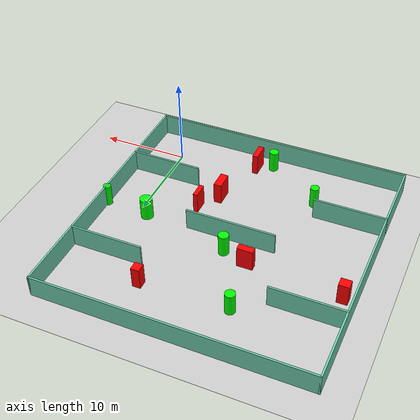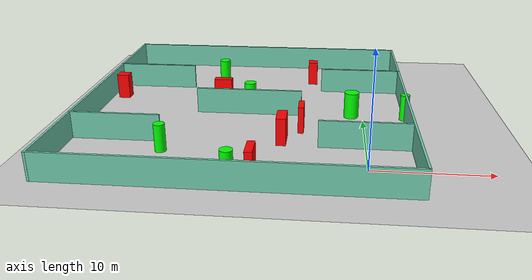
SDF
<sdf version="1.7">
 <world name="default">
  <light name="sun" type="directional">
   <pose>0 0 10 0 -0 0</pose>
   <diffuse>0.8 0.8 0.8 1</diffuse>
   <specular>0.2 0.2 0.2 1</specular>
   <attenuation>
    <range>1000</range>
    <constant>0.9</constant>
    <linear>0.01</linear>
    <quadratic>0.001</quadratic>
   </attenuation>
   <direction>-0.5 0.1 -0.9</direction>
   <spot><inner_angle>0</inner_angle><outer_angle>0</outer_angle><falloff>0</falloff></spot>
  </light>
  <model name="ground_plane">
   <static>1</static>
   <link name="link">
    <collision name="collision">
     <geometry><plane><normal>0 0 1</normal><size>100 100</size></plane></geometry>
     <surface>
      <contact><collide_bitmask>65535</collide_bitmask></contact>
      <friction><ode><mu>100</mu><mu2>50</mu2></ode></friction>
     </surface>
    </collision>
    <visual name="visual">
     <cast_shadows>0</cast_shadows>
     <geometry><plane><normal>0 0 1</normal><size>100 100</size></plane></geometry>
     <material>
      <script><uri>file://media/materials/scripts/gazebo.material</uri><name>Gazebo/Grey</name></script>
     </material>
    </visual>
   </link>
  </model>
  <gravity>0 0 -9.8</gravity>
  <magnetic_field>6e-06 2.3e-05 -4.2e-05</magnetic_field>
  <atmosphere type="adiabatic"/>
  <physics type="ode">
   <max_step_size>0.001</max_step_size>
   <real_time_factor>1</real_time_factor>
   <real_time_update_rate>1000</real_time_update_rate>
  </physics>
  <scene><ambient>0.4 0.4 0.4 1</ambient><background>0.7 0.7 0.7 1</background><shadows>1</shadows></scene>
  <spherical_coordinates>
   <surface_model>EARTH_WGS84</surface_model>
   <latitude_deg>0</latitude_deg>
   <longitude_deg>0</longitude_deg>
   <elevation>0</elevation>
   <heading_deg>0</heading_deg>
  </spherical_coordinates>
  <model name="my_base_walls">
   <link name="Wall_10">
    <collision name="Wall_10_Collision">
     <geometry><box><size>8.2 0.2 2.5</size></box></geometry>
     <pose>0 0 1.25 0 -0 0</pose>
    </collision>
    <visual name="Wall_10_Visual">
     <pose>0 0 1.25 0 -0 0</pose>
     <geometry><box><size>8.2 0.2 2.5</size></box></geometry>
     <material>
      <script><uri>file://media/materials/scripts/gazebo.material</uri><name>Gazebo/Grey</name></script>
      <ambient>0.435294 0.796078 0.67451 1</ambient>
     </material>
     <meta><layer>0</layer></meta>
    </visual>
    <pose>-11 -7 0 0 -0 0</pose>
   </link>
   <link name="Wall_12">
    <collision name="Wall_12_Collision">
     <geometry><box><size>8.2 0.2 2.5</size></box></geometry>
     <pose>0 0 1.25 0 -0 0</pose>
    </collision>
    <visual name="Wall_12_Visual">
     <pose>0 0 1.25 0 -0 0</pose>
     <geometry><box><size>8.2 0.2 2.5</size></box></geometry>
     <material>
      <script><uri>file://media/materials/scripts/gazebo.material</uri><name>Gazebo/Grey</name></script>
      <ambient>0.435294 0.796078 0.67451 1</ambient>
     </material>
     <meta><layer>0</layer></meta>
    </visual>
    <pose>-11 7 0 0 -0 0</pose>
   </link>
   <link name="Wall_14">
    <collision name="Wall_14_Collision">
     <geometry><box><size>8.2 0.2 2.5</size></box></geometry>
     <pose>0 0 1.25 0 -0 0</pose>
    </collision>
    <visual name="Wall_14_Visual">
     <pose>0 0 1.25 0 -0 0</pose>
     <geometry><box><size>8.2 0.2 2.5</size></box></geometry>
     <material>
      <script><uri>file://media/materials/scripts/gazebo.material</uri><name>Gazebo/Grey</name></script>
      <ambient>0.435294 0.796078 0.67451 1</ambient>
     </material>
     <meta><layer>0</layer></meta>
    </visual>
    <pose>11 7 0 0 -0 3.14159</pose>
   </link>
   <link name="Wall_16">
    <collision name="Wall_16_Collision">
     <geometry><box><size>10.2 0.2 2.5</size></box></geometry>
     <pose>0 0 1.25 0 -0 0</pose>
    </collision>
    <visual name="Wall_16_Visual">
     <pose>0 0 1.25 0 -0 0</pose>
     <geometry><box><size>10.2 0.2 2.5</size></box></geometry>
     <material>
      <script><uri>file://media/materials/scripts/gazebo.material</uri><name>Gazebo/Grey</name></script>
      <ambient>0.435294 0.796078 0.67451 1</ambient>
     </material>
     <meta><layer>0</layer></meta>
    </visual>
    <pose>0 0 0 0 -0 3.14159</pose>
   </link>
   <link name="Wall_2">
    <collision name="Wall_2_Collision">
     <geometry><box><size>30.2 0.2 2.5</size></box></geometry>
     <pose>0 0 1.25 0 -0 0</pose>
    </collision>
    <visual name="Wall_2_Visual">
     <pose>0 0 1.25 0 -0 0</pose>
     <geometry><box><size>30.2 0.2 2.5</size></box></geometry>
     <material>
      <script><uri>file://media/materials/scripts/gazebo.material</uri><name>Gazebo/Grey</name></script>
      <ambient>0.435294 0.796078 0.67451 1</ambient>
     </material>
     <meta><layer>0</layer></meta>
    </visual>
    <pose>0 -15 0 0 -0 3.14159</pose>
   </link>
   <link name="Wall_3">
    <collision name="Wall_3_Collision">
     <geometry><box><size>30.2 0.2 2.5</size></box></geometry>
     <pose>0 0 1.25 0 -0 0</pose>
    </collision>
    <visual name="Wall_3_Visual">
     <pose>0 0 1.25 0 -0 0</pose>
     <geometry><box><size>30.2 0.2 2.5</size></box></geometry>
     <material>
      <script><uri>file://media/materials/scripts/gazebo.material</uri><name>Gazebo/Grey</name></script>
      <ambient>0.435294 0.796078 0.67451 1</ambient>
     </material>
     <meta><layer>0</layer></meta>
    </visual>
    <pose>-15 0 0 0 -0 1.5708</pose>
   </link>
   <link name="Wall_4">
    <collision name="Wall_4_Collision">
     <geometry><box><size>30.2 0.2 2.5</size></box></geometry>
     <pose>0 0 1.25 0 -0 0</pose>
    </collision>
    <visual name="Wall_4_Visual">
     <pose>0 0 1.25 0 -0 0</pose>
     <geometry><box><size>30.2 0.2 2.5</size></box></geometry>
     <material>
      <script><uri>file://media/materials/scripts/gazebo.material</uri><name>Gazebo/Grey</name></script>
      <ambient>0.435294 0.796078 0.67451 1</ambient>
     </material>
     <meta><layer>0</layer></meta>
    </visual>
    <pose>0 15 0 0 -0 0</pose>
   </link>
   <link name="Wall_6">
    <collision name="Wall_6_Collision">
     <geometry><box><size>30.2 0.2 2.5</size></box></geometry>
     <pose>0 0 1.25 0 -0 0</pose>
    </collision>
    <visual name="Wall_6_Visual">
     <pose>0 0 1.25 0 -0 0</pose>
     <geometry><box><size>30.2 0.2 2.5</size></box></geometry>
     <material>
      <script><uri>file://media/materials/scripts/gazebo.material</uri><name>Gazebo/Grey</name></script>
      <ambient>0.435294 0.796078 0.67451 1</ambient>
     </material>
     <meta><layer>0</layer></meta>
    </visual>
    <pose>15 0 0 0 -0 1.5708</pose>
   </link>
   <link name="Wall_8">
    <collision name="Wall_8_Collision">
     <geometry><box><size>8.2 0.2 2.5</size></box></geometry>
     <pose>0 0 1.25 0 -0 0</pose>
    </collision>
    <visual name="Wall_8_Visual">
     <pose>0 0 1.25 0 -0 0</pose>
     <geometry><box><size>8.2 0.2 2.5</size></box></geometry>
     <material>
      <script><uri>file://media/materials/scripts/gazebo.material</uri><name>Gazebo/Grey</name></script>
      <ambient>0.435294 0.796078 0.67451 1</ambient>
     </material>
     <meta><layer>0</layer></meta>
    </visual>
    <pose>11 -7 0 0 -0 3.14159</pose>
   </link>
   <static>1</static>
   <pose>-11 11 0 0 -0 0</pose>
  </model>
  <model name="cylinder1">
   <static>1</static>
   <link name="link">
    <inertial>
     <mass>1</mass>
     <inertia><ixx>0.5</ixx><ixy>0</ixy><ixz>0</ixz><iyy>0.5</iyy><iyz>0</iyz><izz>1</izz></inertia>
    </inertial>
    <collision name="collision">
     <geometry><cylinder><radius>0.4298758313294015</radius><length>2.5</length></cylinder></geometry>
    </collision>
    <visual name="visual">
     <geometry><cylinder><radius>0.4298758313294015</radius><length>2.5</length></cylinder></geometry>
     <material>
      <ambient>0 1 0 1</ambient>
      <diffuse>0 1 0 1</diffuse>
      <specular>0.1 0.1 0.1 1</specular>
      <emissive>0 0 0 0</emissive>
     </material>
    </visual>
   </link>
   <pose>3.9305082006963907 10.790046266632368 1.25 0 0 0</pose>
  </model>
  <model name="cylinder2">
   <static>1</static>
   <link name="link">
    <inertial>
     <mass>1</mass>
     <inertia><ixx>0.5</ixx><ixy>0</ixy><ixz>0</ixz><iyy>0.5</iyy><iyz>0</iyz><izz>1</izz></inertia>
    </inertial>
    <collision name="collision">
     <geometry><cylinder><radius>0.6927832439644922</radius><length>2.5</length></cylinder></geometry>
    </collision>
    <visual name="visual">
     <geometry><cylinder><radius>0.6927832439644922</radius><length>2.5</length></cylinder></geometry>
     <material>
      <ambient>0 1 0 1</ambient>
      <diffuse>0 1 0 1</diffuse>
      <specular>0.1 0.1 0.1 1</specular>
      <emissive>0 0 0 0</emissive>
     </material>
    </visual>
   </link>
   <pose>-1.078220235766306 11.070777772416458 1.25 0 0 0</pose>
  </model>
  <model name="cylinder3">
   <static>1</static>
   <link name="link">
    <inertial>
     <mass>1</mass>
     <inertia><ixx>0.5</ixx><ixy>0</ixy><ixz>0</ixz><iyy>0.5</iyy><iyz>0</iyz><izz>1</izz></inertia>
    </inertial>
    <collision name="collision">
     <geometry><cylinder><radius>0.4916345382438858</radius><length>2.5</length></cylinder></geometry>
    </collision>
    <visual name="visual">
     <geometry><cylinder><radius>0.4916345382438858</radius><length>2.5</length></cylinder></geometry>
     <material>
      <ambient>0 1 0 1</ambient>
      <diffuse>0 1 0 1</diffuse>
      <specular>0.1 0.1 0.1 1</specular>
      <emissive>0 0 0 0</emissive>
     </material>
    </visual>
   </link>
   <pose>-17.391327566372055 2.0922949243233733 1.25 0 0 0</pose>
  </model>
  <model name="cylinder4">
   <static>1</static>
   <link name="link">
    <inertial>
     <mass>1</mass>
     <inertia><ixx>0.5</ixx><ixy>0</ixy><ixz>0</ixz><iyy>0.5</iyy><iyz>0</iyz><izz>1</izz></inertia>
    </inertial>
    <collision name="collision">
     <geometry><cylinder><radius>0.5607304458245667</radius><length>2.5</length></cylinder></geometry>
    </collision>
    <visual name="visual">
     <geometry><cylinder><radius>0.5607304458245667</radius><length>2.5</length></cylinder></geometry>
     <material>
      <ambient>0 1 0 1</ambient>
      <diffuse>0 1 0 1</diffuse>
      <specular>0.1 0.1 0.1 1</specular>
      <emissive>0 0 0 0</emissive>
     </material>
    </visual>
   </link>
   <pose>-14.963576239237344 20.267217954713438 1.25 0 0 0</pose>
  </model>
  <model name="cylinder5">
   <static>1</static>
   <link name="link">
    <inertial>
     <mass>1</mass>
     <inertia><ixx>0.5</ixx><ixy>0</ixy><ixz>0</ixz><iyy>0.5</iyy><iyz>0</iyz><izz>1</izz></inertia>
    </inertial>
    <collision name="collision">
     <geometry><cylinder><radius>0.5795265669161223</radius><length>2.5</length></cylinder></geometry>
    </collision>
    <visual name="visual">
     <geometry><cylinder><radius>0.5795265669161223</radius><length>2.5</length></cylinder></geometry>
     <material>
      <ambient>0 1 0 1</ambient>
      <diffuse>0 1 0 1</diffuse>
      <specular>0.1 0.1 0.1 1</specular>
      <emissive>0 0 0 0</emissive>
     </material>
    </visual>
   </link>
   <pose>-11.133680809821223 13.041979070876465 1.25 0 0 0</pose>
  </model>
  <model name="cylinder6">
   <static>1</static>
   <link name="link">
    <inertial>
     <mass>1</mass>
     <inertia><ixx>0.5</ixx><ixy>0</ixy><ixz>0</ixz><iyy>0.5</iyy><iyz>0</iyz><izz>1</izz></inertia>
    </inertial>
    <collision name="collision">
     <geometry><cylinder><radius>0.5306693737913503</radius><length>2.5</length></cylinder></geometry>
    </collision>
    <visual name="visual">
     <geometry><cylinder><radius>0.5306693737913503</radius><length>2.5</length></cylinder></geometry>
     <material>
      <ambient>0 1 0 1</ambient>
      <diffuse>0 1 0 1</diffuse>
      <specular>0.1 0.1 0.1 1</specular>
      <emissive>0 0 0 0</emissive>
     </material>
    </visual>
   </link>
   <pose>-10.939984200305812 -2.262234646742281 1.25 0 0 0</pose>
  </model>
  <model name="box1">
   <static>1</static>
   <link name="link">
    <inertial>
     <mass>1</mass>
     <inertia><ixx>0.083</ixx><ixy>0</ixy><ixz>0</ixz><iyy>0.083</iyy><iyz>0</iyz><izz>0.083</izz></inertia>
    </inertial>
    <collision name="collision">
     <geometry><box><size>0.6460096544836468 2.020497240895091 2.5</size></box></geometry>
    </collision>
    <visual name="visual">
     <geometry><box><size>0.6460096544836468 2.020497240895091 2.5</size></box></geometry>
     <material>
      <ambient>1 0 0 1</ambient>
      <diffuse>1 0 0 1</diffuse>
      <specular>0.1 0.1 0.1 1</specular>
      <emissive>0 0 0 0</emissive>
     </material>
    </visual>
    <sensor name="my_contact" type="contact">
     <contact><collision>box_collision</collision><topic>__default_topic__</topic></contact>
    </sensor>
   </link>
   <pose>-9.216986459589918 -1.5707604191191331 1.25 0 0 0</pose>
  </model>
  <model name="box2">
   <static>1</static>
   <link name="link">
    <inertial>
     <mass>1</mass>
     <inertia><ixx>0.083</ixx><ixy>0</ixy><ixz>0</ixz><iyy>0.083</iyy><iyz>0</iyz><izz>0.083</izz></inertia>
    </inertial>
    <collision name="collision">
     <geometry><box><size>0.8849652914441024 2.040461495121276 2.5</size></box></geometry>
    </collision>
    <visual name="visual">
     <geometry><box><size>0.8849652914441024 2.040461495121276 2.5</size></box></geometry>
     <material>
      <ambient>1 0 0 1</ambient>
      <diffuse>1 0 0 1</diffuse>
      <specular>0.1 0.1 0.1 1</specular>
      <emissive>0 0 0 0</emissive>
     </material>
    </visual>
    <sensor name="my_contact" type="contact">
     <contact><collision>box_collision</collision><topic>__default_topic__</topic></contact>
    </sensor>
   </link>
   <pose>-7.305317167121139 4.934770208050837 1.25 0 0 0</pose>
  </model>
  <model name="box3">
   <static>1</static>
   <link name="link">
    <inertial>
     <mass>1</mass>
     <inertia><ixx>0.083</ixx><ixy>0</ixy><ixz>0</ixz><iyy>0.083</iyy><iyz>0</iyz><izz>0.083</izz></inertia>
    </inertial>
    <collision name="collision">
     <geometry><box><size>1.7677474403165905 0.7233427650449489 2.5</size></box></geometry>
    </collision>
    <visual name="visual">
     <geometry><box><size>1.7677474403165905 0.7233427650449489 2.5</size></box></geometry>
     <material>
      <ambient>1 0 0 1</ambient>
      <diffuse>1 0 0 1</diffuse>
      <specular>0.1 0.1 0.1 1</specular>
      <emissive>0 0 0 0</emissive>
     </material>
    </visual>
    <sensor name="my_contact" type="contact">
     <contact><collision>box_collision</collision><topic>__default_topic__</topic></contact>
    </sensor>
   </link>
   <pose>-14.013621289847574 13.972929345388287 1.25 0 0 0</pose>
  </model>
  <model name="box4">
   <static>1</static>
   <link name="link">
    <inertial>
     <mass>1</mass>
     <inertia><ixx>0.083</ixx><ixy>0</ixy><ixz>0</ixz><iyy>0.083</iyy><iyz>0</iyz><izz>0.083</izz></inertia>
    </inertial>
    <collision name="collision">
     <geometry><box><size>1.168321499896959 1.025571399851245 2.5</size></box></geometry>
    </collision>
    <visual name="visual">
     <geometry><box><size>1.168321499896959 1.025571399851245 2.5</size></box></geometry>
     <material>
      <ambient>1 0 0 1</ambient>
      <diffuse>1 0 0 1</diffuse>
      <specular>0.1 0.1 0.1 1</specular>
      <emissive>0 0 0 0</emissive>
     </material>
    </visual>
    <sensor name="my_contact" type="contact">
     <contact><collision>box_collision</collision><topic>__default_topic__</topic></contact>
    </sensor>
   </link>
   <pose>-24.671168259863887 14.607052221190703 1.25 0 0 0</pose>
  </model>
  <model name="box5">
   <static>1</static>
   <link name="link">
    <inertial>
     <mass>1</mass>
     <inertia><ixx>0.083</ixx><ixy>0</ixy><ixz>0</ixz><iyy>0.083</iyy><iyz>0</iyz><izz>0.083</izz></inertia>
    </inertial>
    <collision name="collision">
     <geometry><box><size>0.9399334735489016 1.0038600814972773 2.5</size></box></geometry>
    </collision>
    <visual name="visual">
     <geometry><box><size>0.9399334735489016 1.0038600814972773 2.5</size></box></geometry>
     <material>
      <ambient>1 0 0 1</ambient>
      <diffuse>1 0 0 1</diffuse>
      <specular>0.1 0.1 0.1 1</specular>
      <emissive>0 0 0 0</emissive>
     </material>
    </visual>
    <sensor name="my_contact" type="contact">
     <contact><collision>box_collision</collision><topic>__default_topic__</topic></contact>
    </sensor>
   </link>
   <pose>-5.084404911692058 20.578727828352715 1.25 0 0 0</pose>
  </model>
  <model name="box6">
   <static>1</static>
   <link name="link">
    <inertial>
     <mass>1</mass>
     <inertia><ixx>0.083</ixx><ixy>0</ixy><ixz>0</ixz><iyy>0.083</iyy><iyz>0</iyz><izz>0.083</izz></inertia>
    </inertial>
    <collision name="collision">
     <geometry><box><size>0.5057905592295923 1.7442841075731916 2.5</size></box></geometry>
    </collision>
    <visual name="visual">
     <geometry><box><size>0.5057905592295923 1.7442841075731916 2.5</size></box></geometry>
     <material>
      <ambient>1 0 0 1</ambient>
      <diffuse>1 0 0 1</diffuse>
      <specular>0.1 0.1 0.1 1</specular>
      <emissive>0 0 0 0</emissive>
     </material>
    </visual>
    <sensor name="my_contact" type="contact">
     <contact><collision>box_collision</collision><topic>__default_topic__</topic></contact>
    </sensor>
   </link>
   <pose>-5.724084246876544 7.531865047928061 1.25 0 0 0</pose>
  </model>
 </world>
</sdf>
